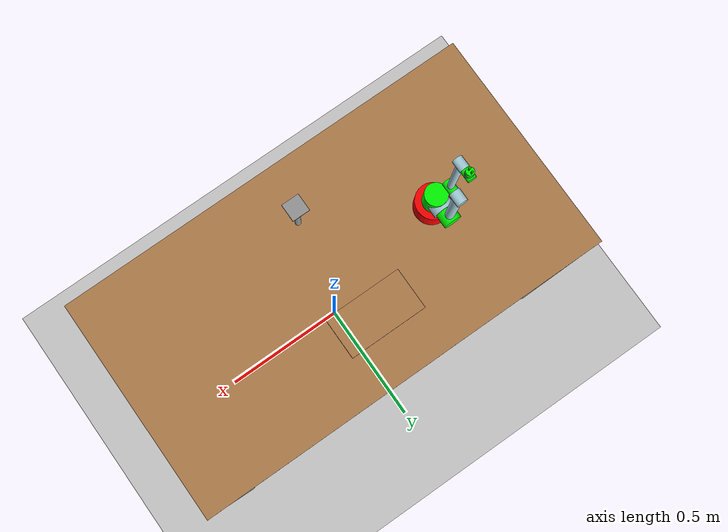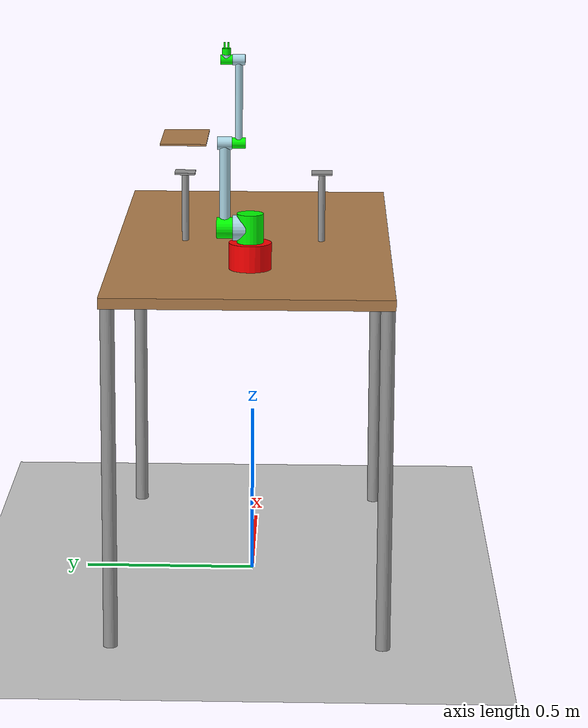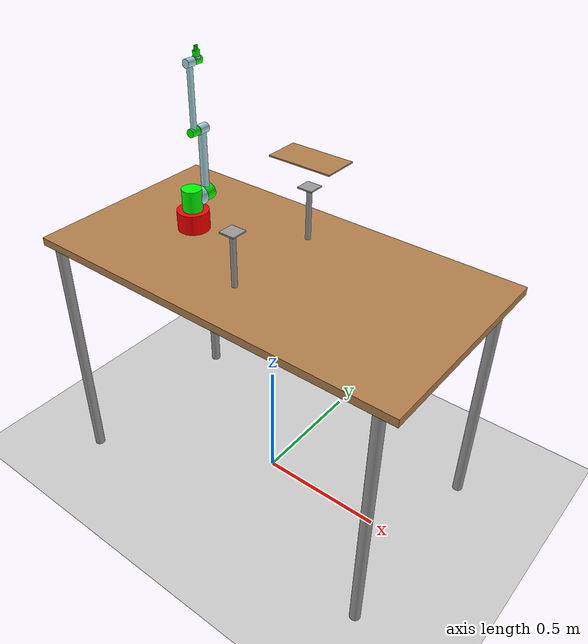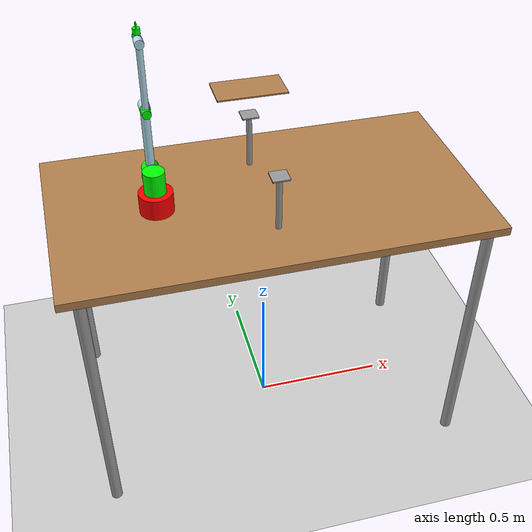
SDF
<?xml version="1.0" ?>
<sdf version="1.8">
  <world name="two_joint_arm_world">

    <!-- LIGHT -->

    <light type="directional" name="sun">
        <cast_shadows>true</cast_shadows>
        <pose>0 0 10 0 0 0</pose>
        <diffuse>0.8 0.8 0.8 1</diffuse>
        <specular>0.2 0.2 0.2 1</specular>
        <attenuation>
            <range>1000</range>
            <constant>0.9</constant>
            <linear>0.01</linear>
            <quadratic>0.001</quadratic>
        </attenuation>
        <direction>-0.5 0.1 -0.9</direction>
    </light>

                            <!--      MODELS      -->

                        <!--      Ground Plane      -->

    <!-- Ground Plane -->
    <model name="ground_plane">
      <static>true</static>
      <link name="link">
        <collision name="collision">
          <geometry>
            <plane>
              <normal>0 0 1</normal>
              <size>10 10</size>
            </plane>
          </geometry>
        </collision>
        <visual name="visual">
          <geometry>
            <plane>
              <normal>0 0 1</normal>
              <size>10 10</size>
            </plane>
          </geometry>

          <!-- COLOR!-->
          <material>
            <ambient>0.8 0.8 0.8 1</ambient>
            <diffuse>0.8 0.8 0.8 1</diffuse>
            <specular>0.5 0.5 0.5 1</specular>
          </material>
        </visual>
      </link>
    </model>

                                <!-- OBJECT MODEL -->

    <model name="wood_object">
        <link name="wood">
            <pose>0 0.2 1.3200 0 0 0</pose>
            <collision name="surface">
                <geometry>
                    <box>
                        <size>0.25 0.1333 0.0050</size>
                    </box>
                </geometry>
                <surface>
                    <friction>
                        <ode>
                            <mu>0.6</mu>
                            <mu2>0.6</mu2>
                        </ode>
                    </friction>
                </surface>
            </collision>
            <visual name="visual1">
                <geometry>
                    <box>
                        <size>0.25 0.1333 0.005</size>
                    </box>
                </geometry>
                <material>
                    <diffuse>1.0 1.0 1.0</diffuse>
                    <script>
                        <uri>file://media/materials/scripts/gazebo.material</uri>
                        <name>Gazebo/Wood</name>
                    </script>
                    <!-- PBR for Ignition, material scripts for gazebo classic-->
                    <pbr>
                        <metal>
                            <albedo_map>https://fuel.gazebosim.org/1.0/openrobotics/models/table/4/files/Table_Diffuse.jpg</albedo_map>
                        </metal>
                    </pbr>
                </material>
            </visual>
        </link>
    </model>

                                <!-- Table and Supports Model -->

    <model name="Table">
        <static>true</static>
        <link name="table_link">
          <collision name="surface">
              <pose>0 0 1.0 0 0 0</pose>
              <geometry>
                  <box>
                      <size>1.5 0.8 0.03</size>
                  </box>
              </geometry>
              <surface>
                  <friction>
                      <ode>
                          <mu>0.6</mu>
                          <mu2>0.6</mu2>
                      </ode>
                  </friction>
              </surface>
          </collision>
          <visual name="visual1">
              <pose>0 0 1.0 0 0 0</pose>
              <geometry>
                  <box>
                      <size>1.5 0.8 0.03</size>
                  </box>
              </geometry>
              <material>
                  <diffuse>1.0 1.0 1.0</diffuse>
                  <script>
                      <uri>file://media/materials/scripts/gazebo.material</uri>
                      <name>Gazebo/Wood</name>
                  </script>
                  <!-- PBR for Ignition, material scripts for gazebo classic-->
                  <pbr>
                      <metal>
                          <albedo_map>https://fuel.gazebosim.org/1.0/openrobotics/models/table/4/files/Table_Diffuse.jpg</albedo_map>
                      </metal>
                  </pbr>
              </material>
          </visual>
          <collision name="front_left_leg">
              <pose>0.68 0.38 0.5 0 0 0</pose>
              <geometry>
                  <cylinder>
                      <radius>0.02</radius>
                      <length>1.0</length>
                  </cylinder>
              </geometry>
          </collision>
          <visual name="front_left_leg">
              <pose>0.68 0.38 0.5 0 0 0</pose>
              <geometry>
                  <cylinder>
                      <radius>0.02</radius>
                      <length>1.0</length>
                  </cylinder>
              </geometry>
              <material>
                  <diffuse>0.5 0.5 0.5</diffuse>
                  <script>
                      <uri>file://media/materials/scripts/gazebo.material</uri>
                      <name>Gazebo/Grey</name>
                  </script>
              </material>
          </visual>
          <collision name="front_right_leg">
              <pose>0.68 -0.38 0.5 0 0 0</pose>
              <geometry>
                  <cylinder>
                      <radius>0.02</radius>
                      <length>1.0</length>
                  </cylinder>
              </geometry>
          </collision>
          <visual name="front_right_leg">
              <pose>0.68 -0.38 0.5 0 0 0</pose>
              <geometry>
                  <cylinder>
                      <radius>0.02</radius>
                      <length>1.0</length>
                  </cylinder>
              </geometry>
              <material>
                  <diffuse>0.5 0.5 0.5</diffuse>
                  <script>
                      <uri>file://media/materials/scripts/gazebo.material</uri>
                      <name>Gazebo/Grey</name>
                  </script>
              </material>
          </visual>
          <collision name="back_right_leg">
              <pose>-0.68 -0.38 0.5 0 0 0</pose>
              <geometry>
                  <cylinder>
                      <radius>0.02</radius>
                      <length>1.0</length>
                  </cylinder>
              </geometry>
          </collision>
          <visual name="back_right_leg">
              <pose>-0.68 -0.38 0.5 0 0 0</pose>
              <geometry>
                  <cylinder>
                      <radius>0.02</radius>
                      <length>1.0</length>
                  </cylinder>
              </geometry>
              <material>
                  <diffuse>0.5 0.5 0.5</diffuse>
                  <script>
                      <uri>file://media/materials/scripts/gazebo.material</uri>
                      <name>Gazebo/Grey</name>
                  </script>
              </material>
          </visual>
          <collision name="back_left_leg">
              <pose>-0.68 0.38 0.5 0 0 0</pose>
              <geometry>
                  <cylinder>
                      <radius>0.02</radius>
                      <length>1.0</length>
                  </cylinder>
              </geometry>
          </collision>
          <visual name="back_left_leg">
              <pose>-0.68 0.38 0.5 0 0 0</pose>
              <geometry>
                  <cylinder>
                      <radius>0.02</radius>
                      <length>1.0</length>
                  </cylinder>
              </geometry>
              <material>
                  <diffuse>0.5 0.5 0.5</diffuse>
                  <script>
                      <uri>file://media/materials/scripts/gazebo.material</uri>
                      <name>Gazebo/Grey</name>
                  </script>
              </material>
          </visual>
        </link>

                            <!-- SUPPORT LINKS -->

                            <!-- START SUPPORT -->

        <link name="body_support_start">
            <pose relative_to="table_link">0 0.2 1.1150 0 0 0</pose>

            <collision name="body_collision">
                <geometry>
                    <cylinder>
                        <radius>0.01</radius>
                        <length>0.2</length>
                    </cylinder>
                </geometry>
            </collision>
            <visual name="body_visual">
                <geometry>
                    <cylinder>
                        <radius>0.01</radius>
                        <length>0.2</length>
                    </cylinder>
                </geometry>
                <material>
                    <diffuse>0.5 0.5 0.5</diffuse>
                    <script>
                        <uri>file://media/materials/scripts/gazebo.material</uri>
                        <name>Gazebo/Grey</name>
                    </script>
                </material>
            </visual>
        </link>

        <link name="platform_support_start">
            <pose relative_to="body_support_start">0 0 0.1025 0 0 0</pose>

            <collision name="platform_collision">
                <geometry>
                    <box>
                        <size>0.06 0.06 0.005</size>
                    </box>
                </geometry>
            </collision>
            <visual name="platform_visual">
                <geometry>
                    <box>
                        <size>0.06 0.06 0.005</size>
                    </box>
                </geometry>
                <material>
                    <diffuse>0.5 0.5 0.5</diffuse>
                    <script>
                        <uri>file://media/materials/scripts/gazebo.material</uri>
                        <name>Gazebo/Grey</name>
                    </script>
                </material>
            </visual>
        </link>

                            <!-- GOAL SUPPORT -->

        <link name="body_support_goal">
            <pose relative_to="table_link">0 -0.2 1.115 0 0 0</pose>

            <collision name="body_collision">
                <geometry>
                    <cylinder>
                        <radius>0.01</radius>
                        <length>0.2</length>
                    </cylinder>
                </geometry>
            </collision>
            <visual name="body_visual">
                <geometry>
                    <cylinder>
                        <radius>0.01</radius>
                        <length>0.2</length>
                    </cylinder>
                </geometry>
                <material>
                    <diffuse>0.5 0.5 0.5</diffuse>
                    <script>
                        <uri>file://media/materials/scripts/gazebo.material</uri>
                        <name>Gazebo/Grey</name>
                    </script>
                </material>
            </visual>
        </link>

        <link name="platform_support_goal">
            <pose relative_to="body_support_goal">0 0 0.1025 0 0 0</pose>

            <collision name="platform_collision">
                <geometry>
                    <box>
                        <size>0.06 0.06 0.005</size>
                    </box>
                </geometry>
            </collision>
            <visual name="platform_visual">
                <geometry>
                    <box>
                        <size>0.06 0.06 0.005</size>
                    </box>
                </geometry>
                <material>
                    <diffuse>0.5 0.5 0.5</diffuse>
                    <script>
                        <uri>file://media/materials/scripts/gazebo.material</uri>
                        <name>Gazebo/Grey</name>
                    </script>
                </material>
            </visual>
        </link>

                                <!-- START: weld support to table  -->

        <joint name="support_table_start" type="fixed">
            <parent>table_link</parent>
            <child>body_support_start</child>
            <pose>0 0.2 1.115 0 0 0</pose>
        </joint>

                                <!-- START: weld platform to support body -->

        <joint name="platform_body_start" type="fixed">
            <parent>body_support_start</parent>
            <child>platform_support_start</child>
            <pose>0 0 0.1025 0 0 0</pose>
        </joint>

                                <!-- GOAL: weld support to table  -->

        <joint name="support_table_goal" type="fixed">
            <parent>table_link</parent>
            <child>body_support_goal</child>
            <pose>0 -0.2 1.115 0 0 0</pose>
        </joint>

                                <!-- GOAL: weld platform to support body -->

        <joint name="platform_body_goal" type="fixed">
            <parent>body_support_goal</parent>
            <child>platform_support_goal</child>
            <pose>0 0 0.1025 0 0 0</pose>
        </joint>

    </model>

                            <!-- Robotic Arm Model -->

    <model name="two_joint_arm">

      <plugin
        filename="libignition-gazebo-joint-controller-system.so"
        name="ignition::gazebo::systems::JointController">
        <joint_name>joint0</joint_name>
        <topic>/two_joint_arm/joint0/pos_eff</topic>
      </plugin>

      <plugin
        filename="libignition-gazebo-joint-controller-system.so"
        name="ignition::gazebo::systems::JointController">
        <joint_name>joint1</joint_name>
        <topic>/two_joint_arm/joint1/pos_eff</topic>
      </plugin>

      <plugin
        filename="libignition-gazebo-joint-controller-system.so"
        name="ignition::gazebo::systems::JointController">
        <joint_name>joint2</joint_name>
        <topic>/two_joint_arm/joint2/pos_eff</topic>
      </plugin>

      <plugin
        filename="libignition-gazebo-joint-controller-system.so"
        name="ignition::gazebo::systems::JointController">
        <joint_name>joint3</joint_name>
        <topic>/two_joint_arm/joint3/pos_eff</topic>
      </plugin>

      <plugin
        filename="libignition-gazebo-joint-controller-system.so"
        name="ignition::gazebo::systems::JointController">
        <joint_name>joint4</joint_name>
        <topic>/two_joint_arm/joint4/pos_eff</topic>
      </plugin>

      <plugin
        filename="libignition-gazebo-joint-controller-system.so"
        name="ignition::gazebo::systems::JointController">
        <joint_name>right_finger_joint</joint_name>
        <topic>/two_joint_arm/right_finger_joint/pos_eff</topic>
      </plugin>

      <plugin
        filename="libignition-gazebo-joint-controller-system.so"
        name="ignition::gazebo::systems::JointController">
        <joint_name>left_finger_joint</joint_name>
        <topic>/two_joint_arm/left_finger_joint/pos_eff</topic>
      </plugin>

      <plugin
        filename="libignition-gazebo-joint-state-publisher-system.so"
        name="ignition::gazebo::systems::JointStatePublisher">
      </plugin>

                                <!-- Arm Links -->

                                <!-- BASE LINK -->

      <!-- Base Link -->
      <link name="base_link">

        <pose>-0.375 0 1.0525 0 0 1.57079632679</pose>

        <collision name="base_collision">
          <geometry>
            <cylinder>
              <radius>0.06</radius> <!-- 12 cm diameter -->
              <length>0.075</length> <!-- 7.5 cm length -->
            </cylinder>
          </geometry>
        </collision>

        <visual name="base_visual">
          <geometry>
            <cylinder>
              <radius>0.06</radius>
              <length>0.075</length>
            </cylinder>
          </geometry>

          <!-- COLOR!-->
          <material>
            <ambient>1.0 0.0 0.0 1</ambient>
            <diffuse>1.0 0.0 0.0 1</diffuse>
            <specular>1.0 0.0 0.0 1</specular>
          </material>
        </visual>

        <inertial>
          <mass>100</mass>
          <inertia>
            <ixx>0.100</ixx>
            <ixy>0</ixy>
            <ixz>0</ixz>
            <iyy>0.100</iyy>
            <iyz>0</iyz>
            <izz>0.08</izz>
          </inertia>
        </inertial>
      </link>

                            <!-- Motor 0 link -->

      <link name="motor0">

        <pose relative_to="base_link">0 0 0.07875 0 0 0</pose>

        <!-- COLLISION -->
        <collision name="motor0_collision">
            <geometry>
                <cylinder>
                    <radius>0.0375</radius>
                    <length>0.0825</length>
                </cylinder>
            </geometry>
        </collision>

        <!-- VISUAL -->
        <visual name="motor0_visual">
            <geometry>
                <cylinder>
                    <radius>0.0375</radius> <!-- 6.5 cm diameter -->
                    <length>0.0825</length> <!-- 7.15 cm height -->
                </cylinder>
            </geometry>
            <material>
                <ambient>0.0 1.0 0.0 1</ambient> <!-- Green -->
                <diffuse>0.0 1.0 0.0 1</diffuse> <!-- Green -->
                <specular>1.0 1.0 1.0 1</specular>
            </material>
        </visual>
        <inertial>
            <mass>10</mass>
            <inertia>
                <ixx>0.0001709375</ixx>
                <ixy>0</ixy>
                <ixz>0</ixz>
                <iyy>0.0001709375</iyy>
                <iyz>0</iyz>
                <izz>0.0003125</izz>
              </inertia>
        </inertial>
      </link>

                            <!-- Motor 1 link -->

      <link name="motor1">

        <pose relative_to="segment0">0 0 0.04125 0 0 0</pose>

        <!-- COLLISION -->
        <collision name="motor1_collision">
            <geometry>
                <cylinder>
                    <radius>0.030</radius>
                    <length>0.045</length>
                </cylinder>
            </geometry>
        </collision>

        <!-- VISUAL -->
        <visual name="motor1_visual">
            <geometry>
                <cylinder>
                    <radius>0.030</radius> <!-- 4 cm diameter -->
                    <length>0.045</length> <!-- 3 cm length -->
                </cylinder>
            </geometry>
            <material>
                <ambient>0.0 1.0 0.0 1</ambient> <!-- Green -->
                <diffuse>0.0 1.0 0.0 1</diffuse> <!-- Green -->
                <specular>1.0 1.0 1.0 1</specular>
            </material>
        </visual>
        <inertial>
            <mass>1</mass>
            <inertia>
                <ixx>0.0002291666667</ixx>
                <ixy>0</ixy>
                <ixz>0</ixz>
                <iyy>0.0002291666667</iyy>
                <iyz>0</iyz>
                <izz>0.0001</izz>
            </inertia>
        </inertial>
      </link>

                              <!-- Motor 2 Link-->

      <link name="motor2">

        <pose relative_to="segment2">0 0 0.0390 0 0 0</pose>

        <!-- COLLISION -->
        <collision name="motor2 collision">
            <geometry>
                <cylinder>
                    <radius>0.015</radius>
                    <length>0.0375</length>
                </cylinder>
            </geometry>
        </collision>

        <!-- VISUAL -->
        <visual name="motor2 visual">
            <geometry>
                <cylinder>
                    <radius>0.015</radius> <!-- 2 cm diameter -->
                    <length>0.0375</length> <!-- 2.5 cm height -->
                </cylinder>
            </geometry>
            <material>
                <ambient>0.0 1.0 0.0 1</ambient> <!-- Green -->
                <diffuse>0.0 1.0 0.0 1</diffuse> <!-- Green -->
                <specular>1.0 1.0 1.0 1</specular>
            </material>
        </visual>
        <inertial>
          <mass>0.1</mass>
          <inertia>
              <ixx>0.00013125</ixx>
              <ixy>0</ixy>
              <ixz>0</ixz>
              <iyy>0.00013125</iyy>
              <iyz>0</iyz>
              <izz>0.0000025</izz>
          </inertia>
        </inertial>
      </link>

                              <!-- Motor 3 Link-->

      <link name="motor3">

        <pose relative_to="segment4">0 0 0.034 0 0 0</pose>

        <!-- COLLISION -->
        <collision name="motor3 collision">
            <geometry>
                <cylinder>
                    <radius>0.0135</radius>
                    <length>0.033</length>
                </cylinder>
            </geometry>
        </collision>

        <!-- VISUAL -->
        <visual name="motor3 visual">
            <geometry>
                <cylinder>
                    <radius>0.0135</radius> <!-- 1.8 cm diameter -->
                    <length>0.033</length> <!-- 2.5 cm height -->
                </cylinder>
            </geometry>
            <material>
                <ambient>0.0 1.0 0.0 1</ambient> <!-- Green -->
                <diffuse>0.0 1.0 0.0 1</diffuse> <!-- Green -->
                <specular>1.0 1.0 1.0 1</specular>
            </material>
        </visual>
        <inertial>
          <mass>0.1</mass>
          <inertia>
              <ixx>0.00013125</ixx>
              <ixy>0</ixy>
              <ixz>0</ixz>
              <iyy>0.00013125</iyy>
              <iyz>0</iyz>
              <izz>0.0000025</izz>
          </inertia>
        </inertial>
      </link>

                            <!-- Motor 4 Link-->

      <link name="motor4">

        <pose relative_to="segment5">0 0 0.015 0 0 0</pose>

        <!-- COLLISION -->
        <collision name="motor4_collision">
            <geometry>
                <cylinder>
                    <radius>0.012</radius>
                    <length>0.0195</length>
                </cylinder>
            </geometry>
        </collision>

        <!-- VISUAL -->
        <visual name="motor4_visual">
            <geometry>
                <cylinder>
                    <radius>0.012</radius> <!-- 1.6 cm diameter -->
                    <length>0.0195</length> <!-- 1.3 cm height -->
                </cylinder>
            </geometry>
            <material>
                <ambient>0.0 1.0 0.0 1</ambient> <!-- Green -->
                <diffuse>0.0 1.0 0.0 1</diffuse> <!-- Green -->
                <specular>1.0 1.0 1.0 1</specular>
            </material>
        </visual>
        <inertial>
          <mass>0.1</mass>
          <inertia>
              <ixx>0.00013125</ixx>
              <ixy>0</ixy>
              <ixz>0</ixz>
              <iyy>0.00013125</iyy>
              <iyz>0</iyz>
              <izz>0.0000025</izz>
          </inertia>
        </inertial>
      </link>

                    <!-- CUSTOM SIMPLE GRIPPER -->

                      <!-- right finger Link -->

      <link name="right_finger">

        <pose relative_to="segment6">0.005625 0 0.00975 0 0 0</pose> <!-- Adjusted Z to account for half the height of the cuboid -->

        <!-- COLLISION -->
        <collision name="right_finger_collision">
            <geometry>
                <box>
                    <size>0.0045 0.0045 0.0195</size> <!-- 4 times taller than wide -->
                </box>
            </geometry>
        </collision>

        <!-- VISUAL -->
        <visual name="right_finger_visual">
            <geometry>
                <box>
                    <size>0.0045 0.0045 0.0195</size>
                </box>
            </geometry>
            <material>
                <ambient>0.0 1.0 0.0 1</ambient> <!-- Green -->
                <diffuse>0.0 1.0 0.0 1</diffuse> <!-- Green -->
                <specular>1.0 1.0 1.0 1</specular>
            </material>
        </visual>

        <inertial>
          <mass>0.1</mass>
          <!-- The inertia tensor values would need to be recalculated for the box shape. The values below are placeholders. -->
          <inertia>
              <ixx>0.00013125</ixx>
              <ixy>0</ixy>
              <ixz>0</ixz>
              <iyy>0.00013125</iyy>
              <iyz>0</iyz>
              <izz>0.0000025</izz>
          </inertia>
        </inertial>
      </link>

                      <!-- left finger Link -->

      <link name="left_finger">

        <pose relative_to="segment6">-0.005625 0 0.00975 0 0 0</pose> <!-- Adjusted Z to account for half the height of the cuboid -->

        <!-- COLLISION -->
        <collision name="left_finger_collision">
            <geometry>
                <box>
                  <size>0.0045 0.0045 0.0195</size> <!-- 4 times taller than wide -->
                </box>
            </geometry>
        </collision>

        <!-- VISUAL -->
        <visual name="left_finger_visual">
            <geometry>
                <box>
                  <size>0.0045 0.0045 0.0195</size>
                </box>
            </geometry>
            <material>
                <ambient>0.0 1.0 0.0 1</ambient> <!-- Green -->
                <diffuse>0.0 1.0 0.0 1</diffuse> <!-- Green -->
                <specular>1.0 1.0 1.0 1</specular>
            </material>
        </visual>

        <inertial>
          <mass>0.1</mass>
          <!-- The inertia tensor values would need to be recalculated for the box shape. The values below are placeholders. -->
          <inertia>
              <ixx>0.00013125</ixx>
              <ixy>0</ixy>
              <ixz>0</ixz>
              <iyy>0.00013125</iyy>
              <iyz>0</iyz>
              <izz>0.0000025</izz>
          </inertia>
        </inertial>
      </link>

                          <!-- Segment 0 -->

      <link name="segment0">

        <pose relative_to="motor0">0.03 0 0 0 1.57079632679 0</pose>

        <!-- COLLISION -->
        <collision name="segment0 collision">
            <geometry>
                <cylinder>
                    <radius>0.0360</radius>
                    <length>0.0375</length>
                </cylinder>
            </geometry>
        </collision>

        <!-- VISUAL -->
        <visual name="segment0 visual">
            <geometry>
                <cylinder>
                    <radius>0.0360</radius> <!-- 7.2cm diameter -->
                    <length>0.0375</length> <!-- 3.75 cm length -->
                </cylinder>
            </geometry>
            <material>
                <ambient>0.678 0.847 0.902 1</ambient> <!-- Light Blue -->
                <diffuse>0.678 0.847 0.902 1</diffuse>
                <specular>1.0 1.0 1.0 1</specular>
            </material>
        </visual>
        <inertial>
          <mass>0.1</mass>
          <inertia>
              <ixx>0.00013125</ixx>
              <ixy>0</ixy>
              <ixz>0</ixz>
              <iyy>0.00013125</iyy>
              <iyz>0</iyz>
              <izz>0.0000025</izz>
          </inertia>
        </inertial>
      </link>

                            <!-- first segment-->

      <link name="segment1">

        <pose relative_to="motor1">-0.1275 0 0 0 -1.57079632679 0</pose>

        <!-- COLLISION -->
        <collision name="segment1 collision">
            <geometry>
                <cylinder>
                    <radius>0.015</radius>
                    <length>0.225</length>
                </cylinder>
            </geometry>
        </collision>

        <!-- VISUAL -->
        <visual name="segment1 visual">
            <geometry>
                <cylinder>
                    <radius>0.015</radius> <!-- 3 cm diameter -->
                    <length>0.225</length> <!-- 22.5 cm height -->
                </cylinder>
            </geometry>
            <material>
                <ambient>0.678 0.847 0.902 1</ambient> <!-- Light Blue -->
                <diffuse>0.678 0.847 0.902 1</diffuse>
                <specular>1.0 1.0 1.0 1</specular>
            </material>
        </visual>
        <inertial>
          <mass>0.1</mass>
          <inertia>
              <ixx>0.00013125</ixx>
              <ixy>0</ixy>
              <ixz>0</ixz>
              <iyy>0.00013125</iyy>
              <iyz>0</iyz>
              <izz>0.0000025</izz>
          </inertia>
        </inertial>
      </link>

                                  <!-- second segment-->

      <link name="segment2">

        <pose relative_to="segment1">0 0 0.1125 0 -1.57079632679 0</pose>

        <!-- COLLISION -->
        <collision name="segment2 collision">
            <geometry>
                <cylinder>
                    <radius>0.0180</radius>
                    <length>0.0405</length>
                </cylinder>
            </geometry>
        </collision>

        <!-- VISUAL -->
        <visual name="segment2 visual">
            <geometry>
                <cylinder>
                    <radius>0.0180</radius> <!-- 2.4 cm diameter -->
                    <length>0.0405</length> <!-- 3 cm height -->
                </cylinder>
            </geometry>
            <material>
                <ambient>0.678 0.847 0.902 1</ambient> <!-- Light Blue -->
                <diffuse>0.678 0.847 0.902 1</diffuse>
                <specular>1.0 1.0 1.0 1</specular>
            </material>
        </visual>
        <inertial>
          <mass>0.1</mass>
          <inertia>
              <ixx>0.00013125</ixx>
              <ixy>0</ixy>
              <ixz>0</ixz>
              <iyy>0.00013125</iyy>
              <iyz>0</iyz>
              <izz>0.0000025</izz>
          </inertia>
        </inertial>
      </link>

                            <!-- third segment-->

      <link name="segment3">

        <pose relative_to="motor2">0.12 0 0 0 -1.57079632679 0</pose>

        <!-- COLLISION -->
        <collision name="segment3_collision">
            <geometry>
                <cylinder>
                    <radius>0.0105</radius>
                    <length>0.225</length>
                </cylinder>
            </geometry>
        </collision>

        <!-- VISUAL -->
        <visual name="segment3_visual">
            <geometry>
                <cylinder>
                    <radius>0.0105</radius> <!-- 2 cm diameter -->
                    <length>0.225</length> <!-- 15 cm height -->
                </cylinder>
            </geometry>
            <material>
                <ambient>0.678 0.847 0.902 1</ambient> <!-- Light Blue -->
                <diffuse>0.678 0.847 0.902 1</diffuse>
                <specular>1.0 1.0 1.0 1</specular>
            </material>
        </visual>
        <inertial>
          <mass>0.1</mass>
          <inertia>
              <ixx>0.00013125</ixx>
              <ixy>0</ixy>
              <ixz>0</ixz>
              <iyy>0.00013125</iyy>
              <iyz>0</iyz>
              <izz>0.0000025</izz>
          </inertia>
        </inertial>
      </link>

                            <!-- fourth segment-->

      <link name="segment4">

        <pose relative_to="segment3">0 0 -0.1125 0 -1.57079632679 0</pose>

        <!-- COLLISION -->
        <collision name="segment4_collision">
            <geometry>
                <cylinder>
                    <radius>0.0150</radius>
                    <length>0.0350</length>
                </cylinder>
            </geometry>
        </collision>

        <!-- VISUAL -->
        <visual name="segment4_visual">
            <geometry>
                <cylinder>
                    <radius>0.0150</radius> <!-- 2.4 cm diameter -->
                    <length>0.0350</length> <!-- 3 cm height -->
                </cylinder>
            </geometry>
            <material>
                <ambient>0.678 0.847 0.902 1</ambient> <!-- Light Blue -->
                <diffuse>0.678 0.847 0.902 1</diffuse>
                <specular>1.0 1.0 1.0 1</specular>
            </material>
        </visual>
        <inertial>
          <mass>0.1</mass>
          <inertia>
              <ixx>0.00013125</ixx>
              <ixy>0</ixy>
              <ixz>0</ixz>
              <iyy>0.00013125</iyy>
              <iyz>0</iyz>
              <izz>0.0000025</izz>
          </inertia>
        </inertial>
      </link>

                            <!-- fifth segment-->

      <link name="segment5">

        <pose relative_to="motor3">-0.00675 0 0 0 -1.57079632679 0</pose>

        <!-- COLLISION -->
        <collision name="segment5_collision">
            <geometry>
                <cylinder>
                    <radius>0.01275</radius>
                    <length>0.015</length>
                </cylinder>
            </geometry>
        </collision>

        <!-- VISUAL -->
        <visual name="segment5_visual">
            <geometry>
                <cylinder>
                    <radius>0.01275</radius> <!-- 1.7 cm diameter -->
                    <length>0.015</length> <!-- 0.5 cm height -->
                </cylinder>
            </geometry>
            <material>
                <ambient>0.678 0.847 0.902 1</ambient> <!-- Light Blue -->
                <diffuse>0.678 0.847 0.902 1</diffuse>
                <specular>1.0 1.0 1.0 1</specular>
            </material>
        </visual>
        <inertial>
          <mass>0.1</mass>
          <inertia>
              <ixx>0.00013125</ixx>
              <ixy>0</ixy>
              <ixz>0</ixz>
              <iyy>0.00013125</iyy>
              <iyz>0</iyz>
              <izz>0.0000025</izz>
          </inertia>
        </inertial>
      </link>

                            <!-- sixth segment-->

      <link name="segment6">

        <pose relative_to="motor4">0 0 0.0065 0 0 0</pose>

        <!-- COLLISION -->
        <collision name="segment6_collision">
            <geometry>
                <cylinder>
                    <radius>0.0075</radius>
                    <length>0.003</length>
                </cylinder>
            </geometry>
        </collision>

        <!-- VISUAL -->
        <visual name="segment6_visual">
            <geometry>
                <cylinder>
                    <radius>0.0075</radius> <!-- 1.6 cm diameter -->
                    <length>0.003</length> <!-- 0.5 cm height -->
                </cylinder>
            </geometry>
            <material>
                <ambient>0.678 0.847 0.902 1</ambient> <!-- Light Blue -->
                <diffuse>0.678 0.847 0.902 1</diffuse>
                <specular>1.0 1.0 1.0 1</specular>
            </material>
        </visual>
        <inertial>
          <mass>0.1</mass>
          <inertia>
              <ixx>0.00013125</ixx>
              <ixy>0</ixy>
              <ixz>0</ixz>
              <iyy>0.00013125</iyy>
              <iyz>0</iyz>
              <izz>0.0000025</izz>
          </inertia>
        </inertial>
      </link>

                        <!--      JOINTS      -->

                            <!-- revolute joint 0  -->

      <joint name="joint0" type="revolute">
         <parent>base_link</parent>
          <child>motor0</child>
          <axis>
              <dynamics>
                <damping>0.000000</damping>
                <friction>0.000000</friction>
              </dynamics>
              <xyz>0 0 1</xyz> <!-- Z-axis rotation -->
              <limit>
                <lower>-3.141592</lower> <!-- -180 degrees -->
                <upper>3.141592</upper>  <!-- 180 degrees -->
                <effort>1e6</effort>
              </limit>
          </axis>
          <pose>0 0 0.07875 0 0 0</pose>
      </joint>

                            <!-- revolute joint 1  -->

      <joint name="joint1" type="revolute">
        <parent>segment0</parent>
         <child>motor1</child>
         <axis>
             <dynamics>
               <friction>0.000000</friction>
               <damping>0.000000</damping>
             </dynamics>
             <xyz>0 0 1</xyz>
             <limit>
                <lower>-1.300000</lower>
                <upper>1.300000</upper>
                <effort>1e6</effort>
             </limit>
         </axis>
         <pose>0 0 0.04125 0 0 0</pose>
      </joint>

                            <!-- revolute joint 2  -->

      <joint name="joint2" type="revolute">
        <parent>segment2</parent>
         <child>motor2</child>
         <axis>
             <dynamics>
               <friction>0.000000</friction>
               <damping>0.000000</damping>
             </dynamics>
             <xyz>0 0 1</xyz>
             <limit>
                <lower>-1.300000</lower>
                <upper>1.300000</upper>
                <effort>1e6</effort>
             </limit>
         </axis>
         <pose>0 0 0.0390 0 0 0</pose>
      </joint>

                            <!-- revolute joint 3  -->

      <joint name="joint3" type="revolute">
        <parent>segment4</parent>
         <child>motor3</child>
         <axis>
             <dynamics>
               <friction>0.000000</friction>
               <damping>0.000000</damping>
             </dynamics>
             <xyz>0 0 1</xyz>
             <limit>
                <lower>-1.300000</lower>
                <upper>1.300000</upper>
                <effort>1e6</effort>
             </limit>
         </axis>
         <pose>0 0 0.034 0 0 0</pose>
      </joint>

                            <!-- revolute joint 4  -->

      <joint name="joint4" type="revolute">
        <parent>segment5</parent>
         <child>motor4</child>
         <axis>
             <dynamics>
               <friction>0.000000</friction>
               <damping>0.000000</damping>
             </dynamics>
             <xyz>0 0 1</xyz>
             <limit>
                <lower>-1.300000</lower>
                <upper>1.300000</upper>
                <effort>1e6</effort>
             </limit>
         </axis>
         <pose>0 0 0.015 0 0 0</pose>
      </joint>

                            <!-- right finger prismatic joint  -->

      <joint name="right_finger_joint" type="prismatic">

         <parent>segment6</parent>
         <child>right_finger</child>

         <axis>
             <dynamics>
               <friction>0.000000</friction>
               <damping>0.000000</damping>
             </dynamics>
             <xyz>1 0 0</xyz>
             <limit>
                <lower>0</lower>
                <upper>0.00375</upper>
                <effort>1e6</effort>
             </limit>
         </axis>
         <pose>0.005625 0 0.00975 0 0 3.14159265359</pose>
      </joint>

                            <!-- left finger prismatic joint  -->

      <joint name="left_finger_joint" type="prismatic">

         <parent>segment6</parent>
         <child>left_finger</child>

         <axis>
             <dynamics>
               <friction>0.000000</friction>
               <damping>0.000000</damping>
             </dynamics>
             <xyz>1 0 0</xyz>
             <limit>
                <lower>0</lower>
                <upper>0.00375</upper>
                <effort>1e6</effort>
             </limit>
         </axis>
         <pose>-0.005625 0 0.00975 0 0 0</pose>
      </joint>

                        <!--      FIXED JOINTS      -->

                            <!-- fixed joint 0  -->

      <joint name="fixed0" type="fixed">
        <parent>motor0</parent>
        <child>segment0</child>
        <pose>0.03 0 0 0 1.57079632679 0</pose>
      </joint>

                            <!-- fixed joint 1  -->

      <joint name="fixed1" type="fixed">
        <parent>motor1</parent>
        <child>segment1</child>
        <pose>-0.1275 0 0 0 -1.57079632679 0</pose>
      </joint>

                            <!-- fixed joint 2  -->

      <joint name="fixed2" type="fixed">
        <parent>segment1</parent>
        <child>segment2</child>
        <pose>0 0 0.1125 0 -1.57079632679 0</pose>
      </joint>

                            <!-- fixed joint 3  -->

      <joint name="fixed3" type="fixed">
        <parent>motor2</parent>
        <child>segment3</child>
        <pose>0.12 0 0 0 -1.57079632679 0</pose>
      </joint>

                            <!-- fixed joint 4  -->

      <joint name="fixed4" type="fixed">
        <parent>segment3</parent>
        <child>segment4</child>
        <pose>0 0 -0.1125 0 -1.57079632679 0</pose>
      </joint>

                            <!-- fixed joint 5  -->

      <joint name="fixed5" type="fixed">
        <parent>motor3</parent>
        <child>segment5</child>
        <pose>-0.00675 0 0 0 -1.57079632679 0</pose>
      </joint>

                            <!-- fixed joint 6 -->

      <joint name="fixed6" type="fixed">
        <parent>motor4</parent>
        <child>segment6</child>
        <pose>0 0 0.0065 0 0 0</pose>
      </joint>

    </model>
  </world>
</sdf>
